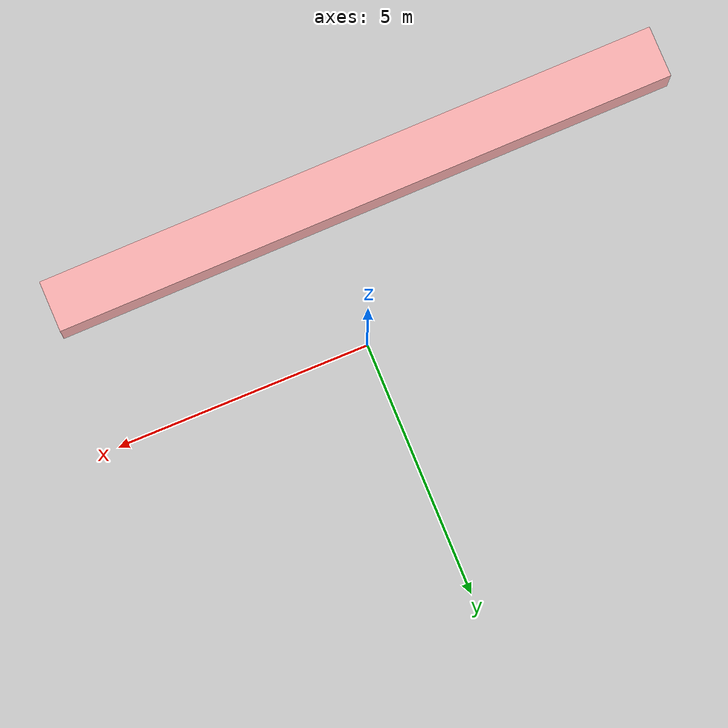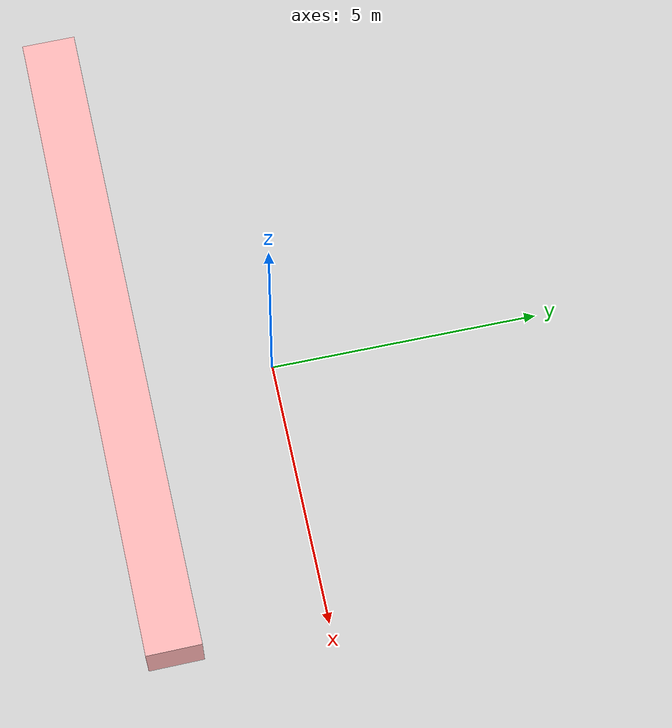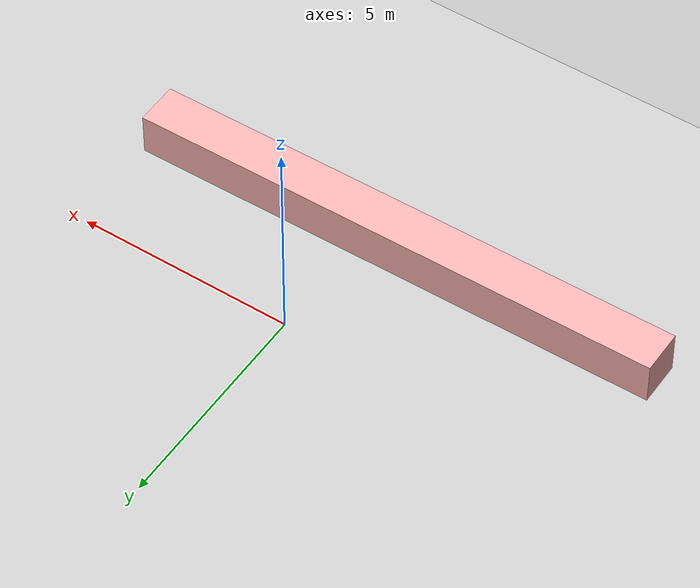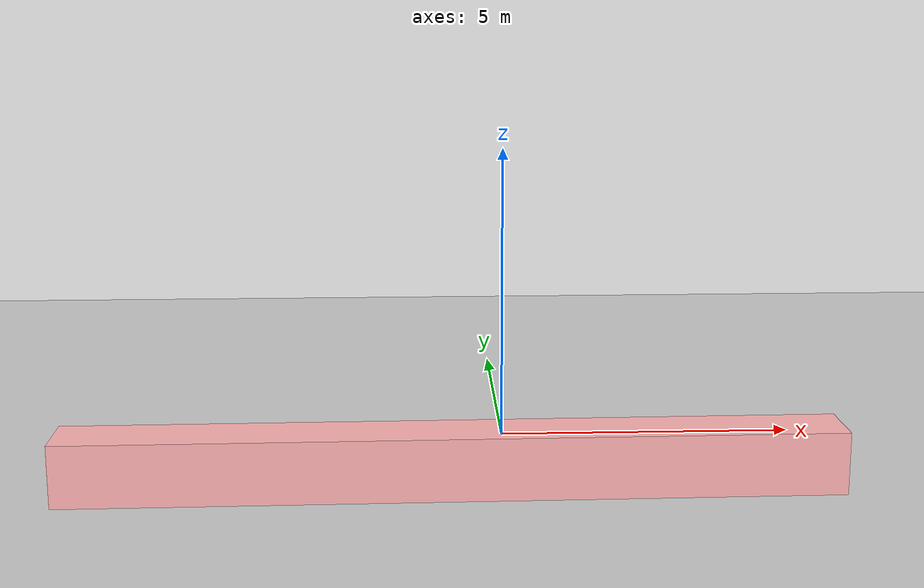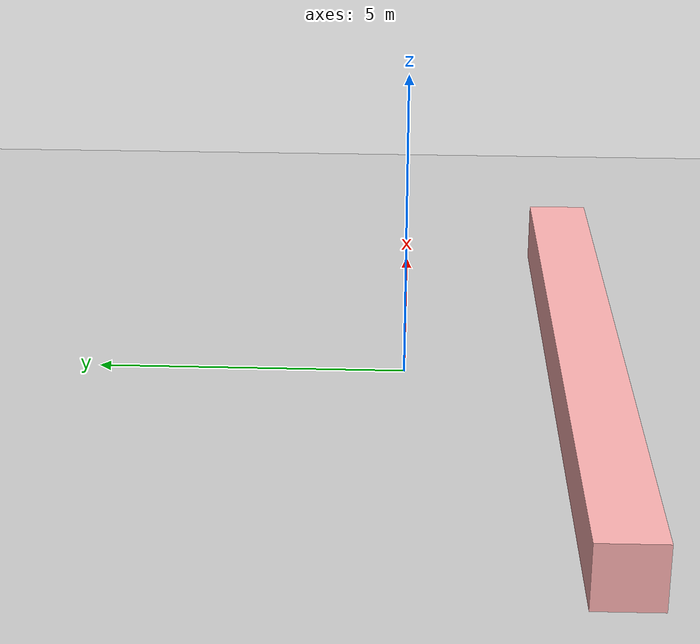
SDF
<sdf version="1.6">
 <world name="default">
  <model name="ground_plane">
   <static>1</static>
   <link name="link">
    <collision name="collision">
     <geometry><plane><normal>0 0 1</normal><size>100 100</size></plane></geometry>
     <surface><friction><ode><mu>100</mu><mu2>50</mu2></ode></friction></surface>
    </collision>
    <visual name="visual">
     <cast_shadows>0</cast_shadows>
     <geometry><plane><normal>0 0 1</normal><size>100 100</size></plane></geometry>
     <material>
      <script><uri>file://media/materials/scripts/gazebo.material</uri><name>Gazebo/Grey</name></script>
     </material>
    </visual>
   </link>
  </model>
  <model name="unit_box_0_clone_0_0_clone_clone_0_clone_clone_clone_0_0_clone_0_0">
   <link name="link">
    <inertial>
     <mass>1</mass>
     <inertia>
      <ixx>0.166667</ixx>
      <ixy>0</ixy>
      <ixz>0</ixz>
      <iyy>0.166667</iyy>
      <iyz>0</iyz>
      <izz>0.166667</izz>
     </inertia>
    </inertial>
    <visual name="visual">
     <geometry><box><size>1 12.2515 1</size></box></geometry>
     <material>
      <script><name>Gazebo/Grey</name><uri>file://media/materials/scripts/gazebo.material</uri></script>
      <ambient>0.6 0.3 0.3 1</ambient>
      <diffuse>1 0.7 0.7 1</diffuse>
      <specular>0.31 0.01 0.01 1</specular>
      <emissive>0.7 0.7 0.7 1</emissive>
      <shader type="vertex"><normal_map>__default__</normal_map></shader>
     </material>
    </visual>
    <collision name="collision">
     <geometry><box><size>1 12.2515 1</size></box></geometry>
     <surface>
      <friction>
       <ode><mu>1</mu><mu2>1</mu2><fdir1>0 0 0</fdir1><slip1>0</slip1><slip2>0</slip2></ode>
       <torsional>
        <coefficient>1</coefficient>
        <patch_radius>0</patch_radius>
        <surface_radius>0</surface_radius>
        <use_patch_radius>1</use_patch_radius>
        <ode><slip>0</slip></ode>
       </torsional>
      </friction>
      <bounce><restitution_coefficient>0</restitution_coefficient><threshold>1e+06</threshold></bounce>
      <contact>
       <collide_without_contact>0</collide_without_contact>
       <collide_without_contact_bitmask>1</collide_without_contact_bitmask>
       <collide_bitmask>1</collide_bitmask>
       <ode>
        <soft_cfm>0</soft_cfm>
        <soft_erp>0.2</soft_erp>
        <kp>1e+13</kp>
        <kd>1</kd>
        <max_vel>0.01</max_vel>
        <min_depth>0</min_depth>
       </ode>
       <bullet>
        <split_impulse>1</split_impulse>
        <split_impulse_penetration_threshold>-0.01</split_impulse_penetration_threshold>
        <soft_cfm>0</soft_cfm>
        <soft_erp>0.2</soft_erp>
        <kp>1e+13</kp>
        <kd>1</kd>
       </bullet>
      </contact>
     </surface>
    </collision>
   </link>
   <static>1</static>
   <pose>-0.945242 -2.84309 0.499628 3.14159 -0.000573 1.58078</pose>
  </model>
 </world>
</sdf>
